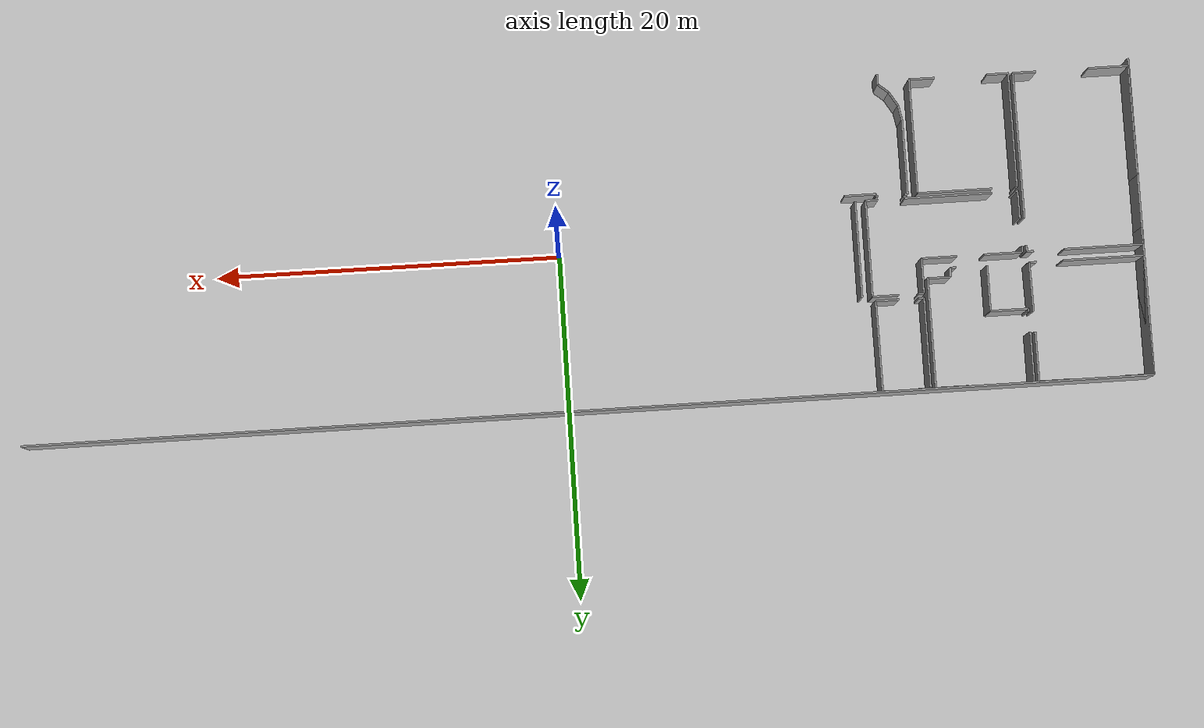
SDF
<sdf version="1.6">
 <world name="default">
  <model name="ground_plane">
   <static>1</static>
   <link name="link">
    <collision name="collision">
     <geometry><plane><normal>0 0 1</normal><size>100 100</size></plane></geometry>
     <surface><friction><ode><mu>100</mu><mu2>50</mu2></ode></friction></surface>
    </collision>
    <visual name="visual">
     <cast_shadows>0</cast_shadows>
     <geometry><plane><normal>0 0 1</normal><size>100 100</size></plane></geometry>
     <material>
      <script><uri>file://media/materials/scripts/gazebo.material</uri><name>Gazebo/Grey</name></script>
     </material>
    </visual>
   </link>
  </model>
  <model name="0510034870_A-40">
   <static>1</static>
   <link name="Wall_0">
    <collision name="Wall_0_Collision">
     <geometry><box><size>0.423984310042 0.1 2.5</size></box></geometry>
     <pose>0.211992155021 0 1.25 0 0 0</pose>
    </collision>
    <visual name="Wall_0_Visual">
     <pose>0.211992155021 0 1.25 0 0 0</pose>
     <geometry><box><size>0.423984310042 0.1 2.5</size></box></geometry>
     <material>
      <script><uri>file://media/materials/scripts/gazebo.material</uri><name>Gazebo/Grey</name></script>
      <ambient>1 1 1 1</ambient>
     </material>
    </visual>
    <pose>6.64944494868 -6.91932238675 0 0 0 3.14159265359</pose>
   </link>
   <link name="Wall_1">
    <collision name="Wall_1_Collision">
     <geometry><box><size>4.67449048891 0.1 2.5</size></box></geometry>
     <pose>2.33724524446 0 1.25 0 0 0</pose>
    </collision>
    <visual name="Wall_1_Visual">
     <pose>2.33724524446 0 1.25 0 0 0</pose>
     <geometry><box><size>4.67449048891 0.1 2.5</size></box></geometry>
     <material>
      <script><uri>file://media/materials/scripts/gazebo.material</uri><name>Gazebo/Grey</name></script>
      <ambient>1 1 1 1</ambient>
     </material>
    </visual>
    <pose>4.67449048891 -6.91932238675 0 0 0 3.14159265359</pose>
   </link>
   <link name="Wall_2">
    <collision name="Wall_2_Collision">
     <geometry><box><size>6.8962190501 0.1 2.5</size></box></geometry>
     <pose>3.44810952505 0 1.25 0 0 0</pose>
    </collision>
    <visual name="Wall_2_Visual">
     <pose>3.44810952505 0 1.25 0 0 0</pose>
     <geometry><box><size>6.8962190501 0.1 2.5</size></box></geometry>
     <material>
      <script><uri>file://media/materials/scripts/gazebo.material</uri><name>Gazebo/Grey</name></script>
      <ambient>1 1 1 1</ambient>
     </material>
    </visual>
    <pose>0.0 -6.91932238675 0 0 0 1.57079632679</pose>
   </link>
   <link name="Wall_3">
    <collision name="Wall_3_Collision">
     <geometry><box><size>1.73833567117 0.1 2.5</size></box></geometry>
     <pose>0.869167835585 0 1.25 0 0 0</pose>
    </collision>
    <visual name="Wall_3_Visual">
     <pose>0.869167835585 0 1.25 0 0 0</pose>
     <geometry><box><size>1.73833567117 0.1 2.5</size></box></geometry>
     <material>
      <script><uri>file://media/materials/scripts/gazebo.material</uri><name>Gazebo/Grey</name></script>
      <ambient>1 1 1 1</ambient>
     </material>
    </visual>
    <pose>0.0 -0.023103336655 0 0 0 0.0</pose>
   </link>
   <link name="Wall_4">
    <collision name="Wall_4_Collision">
     <geometry><box><size>1.85804142098 0.1 2.5</size></box></geometry>
     <pose>0.929020710491 0 1.25 0 0 0</pose>
    </collision>
    <visual name="Wall_4_Visual">
     <pose>0.929020710491 0 1.25 0 0 0</pose>
     <geometry><box><size>1.85804142098 0.1 2.5</size></box></geometry>
     <material>
      <script><uri>file://media/materials/scripts/gazebo.material</uri><name>Gazebo/Grey</name></script>
      <ambient>1 1 1 1</ambient>
     </material>
    </visual>
    <pose>4.75040145221 -0.023103336655 0 0 0 0.0</pose>
   </link>
   <link name="Wall_5">
    <collision name="Wall_5_Collision">
     <geometry><box><size>2.88918649597 0.1 2.5</size></box></geometry>
     <pose>1.44459324799 0 1.25 0 0 0</pose>
    </collision>
    <visual name="Wall_5_Visual">
     <pose>1.44459324799 0 1.25 0 0 0</pose>
     <geometry><box><size>2.88918649597 0.1 2.5</size></box></geometry>
     <material>
      <script><uri>file://media/materials/scripts/gazebo.material</uri><name>Gazebo/Grey</name></script>
      <ambient>1 1 1 1</ambient>
     </material>
    </visual>
    <pose>6.60844287319 -0.023103336655 0 0 0 -1.57079632679</pose>
   </link>
   <link name="Wall_6">
    <collision name="Wall_6_Collision">
     <geometry><box><size>2.83350200904 0.1 2.5</size></box></geometry>
     <pose>1.41675100452 0 1.25 0 0 0</pose>
    </collision>
    <visual name="Wall_6_Visual">
     <pose>1.41675100452 0 1.25 0 0 0</pose>
     <geometry><box><size>2.83350200904 0.1 2.5</size></box></geometry>
     <material>
      <script><uri>file://media/materials/scripts/gazebo.material</uri><name>Gazebo/Grey</name></script>
      <ambient>1 1 1 1</ambient>
     </material>
    </visual>
    <pose>6.60844287319 -4.08611705267 0 0 0 -1.55632536244</pose>
   </link>
   <link name="Wall_7">
    <collision name="Wall_7_Collision">
     <geometry><box><size>0.341980159058 0.1 2.5</size></box></geometry>
     <pose>0.170990079529 0 1.25 0 0 0</pose>
    </collision>
    <visual name="Wall_7_Visual">
     <pose>0.170990079529 0 1.25 0 0 0</pose>
     <geometry><box><size>0.341980159058 0.1 2.5</size></box></geometry>
     <material>
      <script><uri>file://media/materials/scripts/gazebo.material</uri><name>Gazebo/Grey</name></script>
      <ambient>1 1 1 1</ambient>
     </material>
    </visual>
    <pose>11.1978826173 -6.90066199945 0 0 0 3.14159265359</pose>
   </link>
   <link name="Wall_8">
    <collision name="Wall_8_Collision">
     <geometry><box><size>2.6478708752 0.1 2.5</size></box></geometry>
     <pose>1.3239354376 0 1.25 0 0 0</pose>
    </collision>
    <visual name="Wall_8_Visual">
     <pose>1.3239354376 0 1.25 0 0 0</pose>
     <geometry><box><size>2.6478708752 0.1 2.5</size></box></geometry>
     <material>
      <script><uri>file://media/materials/scripts/gazebo.material</uri><name>Gazebo/Grey</name></script>
      <ambient>1 1 1 1</ambient>
     </material>
    </visual>
    <pose>9.07643777015 -6.90066199945 0 0 0 1.57079632679</pose>
   </link>
   <link name="Wall_9">
    <collision name="Wall_9_Collision">
     <geometry><box><size>2.19532474786 0.1 2.5</size></box></geometry>
     <pose>1.09766237393 0 1.25 0 0 0</pose>
    </collision>
    <visual name="Wall_9_Visual">
     <pose>1.09766237393 0 1.25 0 0 0</pose>
     <geometry><box><size>2.19532474786 0.1 2.5</size></box></geometry>
     <material>
      <script><uri>file://media/materials/scripts/gazebo.material</uri><name>Gazebo/Grey</name></script>
      <ambient>1 1 1 1</ambient>
     </material>
    </visual>
    <pose>9.07643777015 -4.25279112426 0 0 0 3.14159265359</pose>
   </link>
   <link name="Wall_10">
    <collision name="Wall_10_Collision">
     <geometry><box><size>0.173275024912 0.1 2.5</size></box></geometry>
     <pose>0.0866375124561 0 1.25 0 0 0</pose>
    </collision>
    <visual name="Wall_10_Visual">
     <pose>0.0866375124561 0 1.25 0 0 0</pose>
     <geometry><box><size>0.173275024912 0.1 2.5</size></box></geometry>
     <material>
      <script><uri>file://media/materials/scripts/gazebo.material</uri><name>Gazebo/Grey</name></script>
      <ambient>1 1 1 1</ambient>
     </material>
    </visual>
    <pose>6.88111302228 -4.25279112426 0 0 0 1.57079632679</pose>
   </link>
   <link name="Wall_11">
    <collision name="Wall_11_Collision">
     <geometry><box><size>2.89629521494 0.1 2.5</size></box></geometry>
     <pose>1.44814760747 0 1.25 0 0 0</pose>
    </collision>
    <visual name="Wall_11_Visual">
     <pose>1.44814760747 0 1.25 0 0 0</pose>
     <geometry><box><size>2.89629521494 0.1 2.5</size></box></geometry>
     <material>
      <script><uri>file://media/materials/scripts/gazebo.material</uri><name>Gazebo/Grey</name></script>
      <ambient>1 1 1 1</ambient>
     </material>
    </visual>
    <pose>6.88111302228 -2.91724054763 0 0 0 1.57079632679</pose>
   </link>
   <link name="Wall_12">
    <collision name="Wall_12_Collision">
     <geometry><box><size>0.745273019238 0.1 2.5</size></box></geometry>
     <pose>0.372636509619 0 1.25 0 0 0</pose>
    </collision>
    <visual name="Wall_12_Visual">
     <pose>0.372636509619 0 1.25 0 0 0</pose>
     <geometry><box><size>0.745273019238 0.1 2.5</size></box></geometry>
     <material>
      <script><uri>file://media/materials/scripts/gazebo.material</uri><name>Gazebo/Grey</name></script>
      <ambient>1 1 1 1</ambient>
     </material>
    </visual>
    <pose>6.88111302228 -0.0209453326817 0 0 0 0.0</pose>
   </link>
   <link name="Wall_13">
    <collision name="Wall_13_Collision">
     <geometry><box><size>1.89333113302 0.1 2.5</size></box></geometry>
     <pose>0.946665566508 0 1.25 0 0 0</pose>
    </collision>
    <visual name="Wall_13_Visual">
     <pose>0.946665566508 0 1.25 0 0 0</pose>
     <geometry><box><size>1.89333113302 0.1 2.5</size></box></geometry>
     <material>
      <script><uri>file://media/materials/scripts/gazebo.material</uri><name>Gazebo/Grey</name></script>
      <ambient>1 1 1 1</ambient>
     </material>
    </visual>
    <pose>10.6502573737 -0.0209453326817 0 0 0 0.0</pose>
   </link>
   <link name="Wall_14">
    <collision name="Wall_14_Collision">
     <geometry><box><size>6.34960933781 0.1 2.5</size></box></geometry>
     <pose>3.17480466891 0 1.25 0 0 0</pose>
    </collision>
    <visual name="Wall_14_Visual">
     <pose>3.17480466891 0 1.25 0 0 0</pose>
     <geometry><box><size>6.34960933781 0.1 2.5</size></box></geometry>
     <material>
      <script><uri>file://media/materials/scripts/gazebo.material</uri><name>Gazebo/Grey</name></script>
      <ambient>1 1 1 1</ambient>
     </material>
    </visual>
    <pose>12.5435885067 -0.0209453326817 0 0 0 -1.57079632679</pose>
   </link>
   <link name="Wall_15">
    <collision name="Wall_15_Collision">
     <geometry><box><size>1.3077504078 0.1 2.5</size></box></geometry>
     <pose>0.6538752039 0 1.25 0 0 0</pose>
    </collision>
    <visual name="Wall_15_Visual">
     <pose>0.6538752039 0 1.25 0 0 0</pose>
     <geometry><box><size>1.3077504078 0.1 2.5</size></box></geometry>
     <material>
      <script><uri>file://media/materials/scripts/gazebo.material</uri><name>Gazebo/Grey</name></script>
      <ambient>1 1 1 1</ambient>
     </material>
    </visual>
    <pose>12.5435885067 -6.37055467049 0 0 0 3.14159265359</pose>
   </link>
   <link name="Wall_16">
    <collision name="Wall_16_Collision">
     <geometry><box><size>0.531464390911 0.1 2.5</size></box></geometry>
     <pose>0.265732195456 0 1.25 0 0 0</pose>
    </collision>
    <visual name="Wall_16_Visual">
     <pose>0.265732195456 0 1.25 0 0 0</pose>
     <geometry><box><size>0.531464390911 0.1 2.5</size></box></geometry>
     <material>
      <script><uri>file://media/materials/scripts/gazebo.material</uri><name>Gazebo/Grey</name></script>
      <ambient>1 1 1 1</ambient>
     </material>
    </visual>
    <pose>11.2358380989 -6.37055467049 0 0 0 -1.64227396669</pose>
   </link>
   <link name="Wall_17">
    <collision name="Wall_17_Collision">
     <geometry><box><size>1.35560731944 0.1 2.5</size></box></geometry>
     <pose>0.677803659721 0 1.25 0 0 0</pose>
    </collision>
    <visual name="Wall_17_Visual">
     <pose>0.677803659721 0 1.25 0 0 0</pose>
     <geometry><box><size>1.35560731944 0.1 2.5</size></box></geometry>
     <material>
      <script><uri>file://media/materials/scripts/gazebo.material</uri><name>Gazebo/Grey</name></script>
      <ambient>1 1 1 1</ambient>
     </material>
    </visual>
    <pose>6.73728840454 -18.0051157388 0 0 0 3.14159265359</pose>
   </link>
   <link name="Wall_18">
    <collision name="Wall_18_Collision">
     <geometry><box><size>2.34333843215 0.1 2.5</size></box></geometry>
     <pose>1.17166921607 0 1.25 0 0 0</pose>
    </collision>
    <visual name="Wall_18_Visual">
     <pose>1.17166921607 0 1.25 0 0 0</pose>
     <geometry><box><size>2.34333843215 0.1 2.5</size></box></geometry>
     <material>
      <script><uri>file://media/materials/scripts/gazebo.material</uri><name>Gazebo/Grey</name></script>
      <ambient>1 1 1 1</ambient>
     </material>
    </visual>
    <pose>2.35780975291 -18.0051157388 0 0 0 3.14159265359</pose>
   </link>
   <link name="Wall_19">
    <collision name="Wall_19_Collision">
     <geometry><box><size>6.41523804688 0.1 2.5</size></box></geometry>
     <pose>3.20761902344 0 1.25 0 0 0</pose>
    </collision>
    <visual name="Wall_19_Visual">
     <pose>3.20761902344 0 1.25 0 0 0</pose>
     <geometry><box><size>6.41523804688 0.1 2.5</size></box></geometry>
     <material>
      <script><uri>file://media/materials/scripts/gazebo.material</uri><name>Gazebo/Grey</name></script>
      <ambient>1 1 1 1</ambient>
     </material>
    </visual>
    <pose>0.0144713207619 -18.0051157388 0 0 0 1.57079632679</pose>
   </link>
   <link name="Wall_20">
    <collision name="Wall_20_Collision">
     <geometry><box><size>0.971990377841 0.1 2.5</size></box></geometry>
     <pose>0.485995188921 0 1.25 0 0 0</pose>
    </collision>
    <visual name="Wall_20_Visual">
     <pose>0.485995188921 0 1.25 0 0 0</pose>
     <geometry><box><size>0.971990377841 0.1 2.5</size></box></geometry>
     <material>
      <script><uri>file://media/materials/scripts/gazebo.material</uri><name>Gazebo/Grey</name></script>
      <ambient>1 1 1 1</ambient>
     </material>
    </visual>
    <pose>0.0144713207619 -8.5352865385 0 0 0 1.57079632679</pose>
   </link>
   <link name="Wall_21">
    <collision name="Wall_21_Collision">
     <geometry><box><size>4.54399471924 0.1 2.5</size></box></geometry>
     <pose>2.27199735962 0 1.25 0 0 0</pose>
    </collision>
    <visual name="Wall_21_Visual">
     <pose>2.27199735962 0 1.25 0 0 0</pose>
     <geometry><box><size>4.54399471924 0.1 2.5</size></box></geometry>
     <material>
      <script><uri>file://media/materials/scripts/gazebo.material</uri><name>Gazebo/Grey</name></script>
      <ambient>1 1 1 1</ambient>
     </material>
    </visual>
    <pose>0.0144713207619 -7.56329616066 0 0 0 0.0</pose>
   </link>
   <link name="Wall_22">
    <collision name="Wall_22_Collision">
     <geometry><box><size>0.392248957494 0.1 2.5</size></box></geometry>
     <pose>0.196124478747 0 1.25 0 0 0</pose>
    </collision>
    <visual name="Wall_22_Visual">
     <pose>0.196124478747 0 1.25 0 0 0</pose>
     <geometry><box><size>0.392248957494 0.1 2.5</size></box></geometry>
     <material>
      <script><uri>file://media/materials/scripts/gazebo.material</uri><name>Gazebo/Grey</name></script>
      <ambient>1 1 1 1</ambient>
     </material>
    </visual>
    <pose>6.33044118487 -7.56329616066 0 0 0 0.0</pose>
   </link>
   <link name="Wall_23">
    <collision name="Wall_23_Collision">
     <geometry><box><size>0.37028809353 0.1 2.5</size></box></geometry>
     <pose>0.185144046765 0 1.25 0 0 0</pose>
    </collision>
    <visual name="Wall_23_Visual">
     <pose>0.185144046765 0 1.25 0 0 0</pose>
     <geometry><box><size>0.37028809353 0.1 2.5</size></box></geometry>
     <material>
      <script><uri>file://media/materials/scripts/gazebo.material</uri><name>Gazebo/Grey</name></script>
      <ambient>1 1 1 1</ambient>
     </material>
    </visual>
    <pose>6.72269014236 -7.56329616066 0 0 0 -1.57079632679</pose>
   </link>
   <link name="Wall_24">
    <collision name="Wall_24_Collision">
     <geometry><box><size>8.48896547592 0.1 2.5</size></box></geometry>
     <pose>4.24448273796 0 1.25 0 0 0</pose>
    </collision>
    <visual name="Wall_24_Visual">
     <pose>4.24448273796 0 1.25 0 0 0</pose>
     <geometry><box><size>8.48896547592 0.1 2.5</size></box></geometry>
     <material>
      <script><uri>file://media/materials/scripts/gazebo.material</uri><name>Gazebo/Grey</name></script>
      <ambient>1 1 1 1</ambient>
     </material>
    </visual>
    <pose>6.72269014236 -9.51616281505 0 0 0 -1.56907665089</pose>
   </link>
   <link name="Wall_25">
    <collision name="Wall_25_Collision">
     <geometry><box><size>1.48242178822 0.1 2.5</size></box></geometry>
     <pose>0.741210894112 0 1.25 0 0 0</pose>
    </collision>
    <visual name="Wall_25_Visual">
     <pose>0.741210894112 0 1.25 0 0 0</pose>
     <geometry><box><size>1.48242178822 0.1 2.5</size></box></geometry>
     <material>
      <script><uri>file://media/materials/scripts/gazebo.material</uri><name>Gazebo/Grey</name></script>
      <ambient>1 1 1 1</ambient>
     </material>
    </visual>
    <pose>12.7630702049 -18.0068929186 0 0 0 3.14159265359</pose>
   </link>
   <link name="Wall_26">
    <collision name="Wall_26_Collision">
     <geometry><box><size>1.25024594898 0.1 2.5</size></box></geometry>
     <pose>0.625122974491 0 1.25 0 0 0</pose>
    </collision>
    <visual name="Wall_26_Visual">
     <pose>0.625122974491 0 1.25 0 0 0</pose>
     <geometry><box><size>1.25024594898 0.1 2.5</size></box></geometry>
     <material>
      <script><uri>file://media/materials/scripts/gazebo.material</uri><name>Gazebo/Grey</name></script>
      <ambient>1 1 1 1</ambient>
     </material>
    </visual>
    <pose>8.24547929903 -18.0068929186 0 0 0 3.14159265359</pose>
   </link>
   <link name="Wall_27">
    <collision name="Wall_27_Collision">
     <geometry><box><size>6.67064416419 0.1 2.5</size></box></geometry>
     <pose>3.33532208209 0 1.25 0 0 0</pose>
    </collision>
    <visual name="Wall_27_Visual">
     <pose>3.33532208209 0 1.25 0 0 0</pose>
     <geometry><box><size>6.67064416419 0.1 2.5</size></box></geometry>
     <material>
      <script><uri>file://media/materials/scripts/gazebo.material</uri><name>Gazebo/Grey</name></script>
      <ambient>1 1 1 1</ambient>
     </material>
    </visual>
    <pose>6.99523335005 -18.0068929186 0 0 0 1.57079632679</pose>
   </link>
   <link name="Wall_28">
    <collision name="Wall_28_Collision">
     <geometry><box><size>0.0954599404645 0.1 2.5</size></box></geometry>
     <pose>0.0477299702322 0 1.25 0 0 0</pose>
    </collision>
    <visual name="Wall_28_Visual">
     <pose>0.0477299702322 0 1.25 0 0 0</pose>
     <geometry><box><size>0.0954599404645 0.1 2.5</size></box></geometry>
     <material>
      <script><uri>file://media/materials/scripts/gazebo.material</uri><name>Gazebo/Grey</name></script>
      <ambient>1 1 1 1</ambient>
     </material>
    </visual>
    <pose>6.99523335005 -11.3362487544 0 0 0 0.0</pose>
   </link>
   <link name="Wall_29">
    <collision name="Wall_29_Collision">
     <geometry><box><size>4.32019701307 0.1 2.5</size></box></geometry>
     <pose>2.16009850653 0 1.25 0 0 0</pose>
    </collision>
    <visual name="Wall_29_Visual">
     <pose>2.16009850653 0 1.25 0 0 0</pose>
     <geometry><box><size>4.32019701307 0.1 2.5</size></box></geometry>
     <material>
      <script><uri>file://media/materials/scripts/gazebo.material</uri><name>Gazebo/Grey</name></script>
      <ambient>1 1 1 1</ambient>
     </material>
    </visual>
    <pose>8.43741471124 -11.3362487544 0 0 0 0.0</pose>
   </link>
   <link name="Wall_30">
    <collision name="Wall_30_Collision">
     <geometry><box><size>6.67064639748 0.1 2.5</size></box></geometry>
     <pose>3.33532319874 0 1.25 0 0 0</pose>
    </collision>
    <visual name="Wall_30_Visual">
     <pose>3.33532319874 0 1.25 0 0 0</pose>
     <geometry><box><size>6.67064639748 0.1 2.5</size></box></geometry>
     <material>
      <script><uri>file://media/materials/scripts/gazebo.material</uri><name>Gazebo/Grey</name></script>
      <ambient>1 1 1 1</ambient>
     </material>
    </visual>
    <pose>12.7576117243 -11.3362487544 0 0 0 -1.56997804309</pose>
   </link>
   <link name="Wall_31">
    <collision name="Wall_31_Collision">
     <geometry><box><size>0.70706365477 0.1 2.5</size></box></geometry>
     <pose>0.353531827385 0 1.25 0 0 0</pose>
    </collision>
    <visual name="Wall_31_Visual">
     <pose>0.353531827385 0 1.25 0 0 0</pose>
     <geometry><box><size>0.70706365477 0.1 2.5</size></box></geometry>
     <material>
      <script><uri>file://media/materials/scripts/gazebo.material</uri><name>Gazebo/Grey</name></script>
      <ambient>1 1 1 1</ambient>
     </material>
    </visual>
    <pose>15.780086701 -11.0998838486 0 0 0 3.14159265359</pose>
   </link>
   <link name="Wall_32">
    <collision name="Wall_32_Collision">
     <geometry><box><size>5.05886907898 0.1 2.5</size></box></geometry>
     <pose>2.52943453949 0 1.25 0 0 0</pose>
    </collision>
    <visual name="Wall_32_Visual">
     <pose>2.52943453949 0 1.25 0 0 0</pose>
     <geometry><box><size>5.05886907898 0.1 2.5</size></box></geometry>
     <material>
      <script><uri>file://media/materials/scripts/gazebo.material</uri><name>Gazebo/Grey</name></script>
      <ambient>1 1 1 1</ambient>
     </material>
    </visual>
    <pose>13.510755111 -11.0998838486 0 0 0 3.14159265359</pose>
   </link>
   <link name="Wall_33">
    <collision name="Wall_33_Collision">
     <geometry><box><size>0.154487696204 0.1 2.5</size></box></geometry>
     <pose>0.0772438481019 0 1.25 0 0 0</pose>
    </collision>
    <visual name="Wall_33_Visual">
     <pose>0.0772438481019 0 1.25 0 0 0</pose>
     <geometry><box><size>0.154487696204 0.1 2.5</size></box></geometry>
     <material>
      <script><uri>file://media/materials/scripts/gazebo.material</uri><name>Gazebo/Grey</name></script>
      <ambient>1 1 1 1</ambient>
     </material>
    </visual>
    <pose>7.13220313164 -11.0998838486 0 0 0 3.14159265359</pose>
   </link>
   <link name="Wall_34">
    <collision name="Wall_34_Collision">
     <geometry><box><size>1.61380614777 0.1 2.5</size></box></geometry>
     <pose>0.806903073886 0 1.25 0 0 0</pose>
    </collision>
    <visual name="Wall_34_Visual">
     <pose>0.806903073886 0 1.25 0 0 0</pose>
     <geometry><box><size>1.61380614777 0.1 2.5</size></box></geometry>
     <material>
      <script><uri>file://media/materials/scripts/gazebo.material</uri><name>Gazebo/Grey</name></script>
      <ambient>1 1 1 1</ambient>
     </material>
    </visual>
    <pose>6.97771543544 -11.0998838486 0 0 0 1.57079632679</pose>
   </link>
   <link name="Wall_35">
    <collision name="Wall_35_Collision">
     <geometry><box><size>0.367241499686 0.1 2.5</size></box></geometry>
     <pose>0.183620749843 0 1.25 0 0 0</pose>
    </collision>
    <visual name="Wall_35_Visual">
     <pose>0.183620749843 0 1.25 0 0 0</pose>
     <geometry><box><size>0.367241499686 0.1 2.5</size></box></geometry>
     <material>
      <script><uri>file://media/materials/scripts/gazebo.material</uri><name>Gazebo/Grey</name></script>
      <ambient>1 1 1 1</ambient>
     </material>
    </visual>
    <pose>6.97771543544 -7.90857679638 0 0 0 1.57079632679</pose>
   </link>
   <link name="Wall_36">
    <collision name="Wall_36_Collision">
     <geometry><box><size>2.19887910735 0.1 2.5</size></box></geometry>
     <pose>1.09943955367 0 1.25 0 0 0</pose>
    </collision>
    <visual name="Wall_36_Visual">
     <pose>1.09943955367 0 1.25 0 0 0</pose>
     <geometry><box><size>2.19887910735 0.1 2.5</size></box></geometry>
     <material>
      <script><uri>file://media/materials/scripts/gazebo.material</uri><name>Gazebo/Grey</name></script>
      <ambient>1 1 1 1</ambient>
     </material>
    </visual>
    <pose>6.97771543544 -7.54133529669 0 0 0 0.0</pose>
   </link>
   <link name="Wall_37">
    <collision name="Wall_37_Collision">
     <geometry><box><size>2.05645084511 0.1 2.5</size></box></geometry>
     <pose>1.02822542256 0 1.25 0 0 0</pose>
    </collision>
    <visual name="Wall_37_Visual">
     <pose>1.02822542256 0 1.25 0 0 0</pose>
     <geometry><box><size>2.05645084511 0.1 2.5</size></box></geometry>
     <material>
      <script><uri>file://media/materials/scripts/gazebo.material</uri><name>Gazebo/Grey</name></script>
      <ambient>1 1 1 1</ambient>
     </material>
    </visual>
    <pose>10.7533337988 -7.54133529669 0 0 0 0.0</pose>
   </link>
   <link name="Wall_38">
    <collision name="Wall_38_Collision">
     <geometry><box><size>2.03258586 0.1 2.5</size></box></geometry>
     <pose>1.01629293 0 1.25 0 0 0</pose>
    </collision>
    <visual name="Wall_38_Visual">
     <pose>1.01629293 0 1.25 0 0 0</pose>
     <geometry><box><size>2.03258586 0.1 2.5</size></box></geometry>
     <material>
      <script><uri>file://media/materials/scripts/gazebo.material</uri><name>Gazebo/Grey</name></script>
      <ambient>1 1 1 1</ambient>
     </material>
    </visual>
    <pose>12.8097846439 -7.54133529669 0 0 0 1.57079632679</pose>
   </link>
   <link name="Wall_39">
    <collision name="Wall_39_Collision">
     <geometry><box><size>0.32344671317 0.1 2.5</size></box></geometry>
     <pose>0.161723356585 0 1.25 0 0 0</pose>
    </collision>
    <visual name="Wall_39_Visual">
     <pose>0.161723356585 0 1.25 0 0 0</pose>
     <geometry><box><size>0.32344671317 0.1 2.5</size></box></geometry>
     <material>
      <script><uri>file://media/materials/scripts/gazebo.material</uri><name>Gazebo/Grey</name></script>
      <ambient>1 1 1 1</ambient>
     </material>
    </visual>
    <pose>12.8097846439 -5.5087494367 0 0 0 0.0</pose>
   </link>
   <link name="Wall_40">
    <collision name="Wall_40_Collision">
     <geometry><box><size>1.52101197692 0.1 2.5</size></box></geometry>
     <pose>0.760505988461 0 1.25 0 0 0</pose>
    </collision>
    <visual name="Wall_40_Visual">
     <pose>0.760505988461 0 1.25 0 0 0</pose>
     <geometry><box><size>1.52101197692 0.1 2.5</size></box></geometry>
     <material>
      <script><uri>file://media/materials/scripts/gazebo.material</uri><name>Gazebo/Grey</name></script>
      <ambient>1 1 1 1</ambient>
     </material>
    </visual>
    <pose>14.2651679118 -5.5087494367 0 0 0 0.0</pose>
   </link>
   <link name="Wall_41">
    <collision name="Wall_41_Collision">
     <geometry><box><size>5.59113773207 0.1 2.5</size></box></geometry>
     <pose>2.79556886604 0 1.25 0 0 0</pose>
    </collision>
    <visual name="Wall_41_Visual">
     <pose>2.79556886604 0 1.25 0 0 0</pose>
     <geometry><box><size>5.59113773207 0.1 2.5</size></box></geometry>
     <material>
      <script><uri>file://media/materials/scripts/gazebo.material</uri><name>Gazebo/Grey</name></script>
      <ambient>1 1 1 1</ambient>
     </material>
    </visual>
    <pose>15.7861798887 -5.5087494367 0 0 0 -1.57188612089</pose>
   </link>
   <link name="Wall_42">
    <collision name="Wall_42_Collision">
     <geometry><box><size>1.34240541278 0.1 2.5</size></box></geometry>
     <pose>0.671202706391 0 1.25 0 0 0</pose>
    </collision>
    <visual name="Wall_42_Visual">
     <pose>0.671202706391 0 1.25 0 0 0</pose>
     <geometry><box><size>1.34240541278 0.1 2.5</size></box></geometry>
     <material>
      <script><uri>file://media/materials/scripts/gazebo.material</uri><name>Gazebo/Grey</name></script>
      <ambient>1 1 1 1</ambient>
     </material>
    </visual>
    <pose>15.6202674656 -5.25435885067 0 0 0 3.14159265359</pose>
   </link>
   <link name="Wall_43">
    <collision name="Wall_43_Collision">
     <geometry><box><size>0.31709964266 0.1 2.5</size></box></geometry>
     <pose>0.15854982133 0 1.25 0 0 0</pose>
    </collision>
    <visual name="Wall_43_Visual">
     <pose>0.15854982133 0 1.25 0 0 0</pose>
     <geometry><box><size>0.31709964266 0.1 2.5</size></box></geometry>
     <material>
      <script><uri>file://media/materials/scripts/gazebo.material</uri><name>Gazebo/Grey</name></script>
      <ambient>1 1 1 1</ambient>
     </material>
    </visual>
    <pose>13.1412286659 -5.25435885067 0 0 0 3.14159265359</pose>
   </link>
   <link name="Wall_44">
    <collision name="Wall_44_Collision">
     <geometry><box><size>5.23341351799 0.1 2.5</size></box></geometry>
     <pose>2.616706759 0 1.25 0 0 0</pose>
    </collision>
    <visual name="Wall_44_Visual">
     <pose>2.616706759 0 1.25 0 0 0</pose>
     <geometry><box><size>5.23341351799 0.1 2.5</size></box></geometry>
     <material>
      <script><uri>file://media/materials/scripts/gazebo.material</uri><name>Gazebo/Grey</name></script>
      <ambient>1 1 1 1</ambient>
     </material>
    </visual>
    <pose>12.8241290232 -5.25435885067 0 0 0 1.57079632679</pose>
   </link>
   <link name="Wall_45">
    <collision name="Wall_45_Collision">
     <geometry><box><size>0.679898192989 0.1 2.5</size></box></geometry>
     <pose>0.339949096495 0 1.25 0 0 0</pose>
    </collision>
    <visual name="Wall_45_Visual">
     <pose>0.339949096495 0 1.25 0 0 0</pose>
     <geometry><box><size>0.679898192989 0.1 2.5</size></box></geometry>
     <material>
      <script><uri>file://media/materials/scripts/gazebo.material</uri><name>Gazebo/Grey</name></script>
      <ambient>1 1 1 1</ambient>
     </material>
    </visual>
    <pose>12.8241290232 -0.0209453326817 0 0 0 0.0</pose>
   </link>
   <link name="Wall_46">
    <collision name="Wall_46_Collision">
     <geometry><box><size>0.558415263435 0.1 2.5</size></box></geometry>
     <pose>0.279207631718 0 1.25 0 0 0</pose>
    </collision>
    <visual name="Wall_46_Visual">
     <pose>0.279207631718 0 1.25 0 0 0</pose>
     <geometry><box><size>0.558415263435 0.1 2.5</size></box></geometry>
     <material>
      <script><uri>file://media/materials/scripts/gazebo.material</uri><name>Gazebo/Grey</name></script>
      <ambient>1 1 1 1</ambient>
     </material>
    </visual>
    <pose>15.0363369787 -0.0209453326817 0 0 0 0.0</pose>
   </link>
   <link name="Wall_47">
    <collision name="Wall_47_Collision">
     <geometry><box><size>5.23347571666 0.1 2.5</size></box></geometry>
     <pose>2.61673785833 0 1.25 0 0 0</pose>
    </collision>
    <visual name="Wall_47_Visual">
     <pose>2.61673785833 0 1.25 0 0 0</pose>
     <geometry><box><size>5.23347571666 0.1 2.5</size></box></geometry>
     <material>
      <script><uri>file://media/materials/scripts/gazebo.material</uri><name>Gazebo/Grey</name></script>
      <ambient>1 1 1 1</ambient>
     </material>
    </visual>
    <pose>15.5947522421 -0.0209453326817 0 0 0 -1.56592091972</pose>
   </link>
   <link name="Wall_48">
    <collision name="Wall_48_Collision">
     <geometry><box><size>0.612238421357 0.1 2.5</size></box></geometry>
     <pose>0.306119210678 0 1.25 0 0 0</pose>
    </collision>
    <visual name="Wall_48_Visual">
     <pose>0.306119210678 0 1.25 0 0 0</pose>
     <geometry><box><size>0.612238421357 0.1 2.5</size></box></geometry>
     <material>
      <script><uri>file://media/materials/scripts/gazebo.material</uri><name>Gazebo/Grey</name></script>
      <ambient>1 1 1 1</ambient>
     </material>
    </visual>
    <pose>14.587091328 -18.4376051234 0 0 0 1.57079632679</pose>
   </link>
   <link name="Wall_49">
    <collision name="Wall_49_Collision">
     <geometry><box><size>0.774941752337 0.1 2.5</size></box></geometry>
     <pose>0.387470876168 0 1.25 0 0 0</pose>
    </collision>
    <visual name="Wall_49_Visual">
     <pose>0.387470876168 0 1.25 0 0 0</pose>
     <geometry><box><size>0.774941752337 0.1 2.5</size></box></geometry>
     <material>
      <script><uri>file://media/materials/scripts/gazebo.material</uri><name>Gazebo/Grey</name></script>
      <ambient>1 1 1 1</ambient>
     </material>
    </visual>
    <pose>14.587091328 -17.825366702 0 0 0 2.44282746906</pose>
   </link>
   <link name="Wall_50">
    <collision name="Wall_50_Collision">
     <geometry><box><size>0.942740448398 0.1 2.5</size></box></geometry>
     <pose>0.471370224199 0 1.25 0 0 0</pose>
    </collision>
    <visual name="Wall_50_Visual">
     <pose>0.471370224199 0 1.25 0 0 0</pose>
     <geometry><box><size>0.942740448398 0.1 2.5</size></box></geometry>
     <material>
      <script><uri>file://media/materials/scripts/gazebo.material</uri><name>Gazebo/Grey</name></script>
      <ambient>1 1 1 1</ambient>
     </material>
    </visual>
    <pose>13.9937671768 -17.3268677842 0 0 0 2.11232426925</pose>
   </link>
   <link name="Wall_51">
    <collision name="Wall_51_Collision">
     <geometry><box><size>0.875119093296 0.1 2.5</size></box></geometry>
     <pose>0.437559546648 0 1.25 0 0 0</pose>
    </collision>
    <visual name="Wall_51_Visual">
     <pose>0.437559546648 0 1.25 0 0 0</pose>
     <geometry><box><size>0.875119093296 0.1 2.5</size></box></geometry>
     <material>
      <script><uri>file://media/materials/scripts/gazebo.material</uri><name>Gazebo/Grey</name></script>
      <ambient>1 1 1 1</ambient>
     </material>
    </visual>
    <pose>13.5078354585 -16.5190126497 0 0 0 1.76671259778</pose>
   </link>
   <link name="Wall_52">
    <collision name="Wall_52_Collision">
     <geometry><box><size>4.33390668537 0.1 2.5</size></box></geometry>
     <pose>2.16695334268 0 1.25 0 0 0</pose>
    </collision>
    <visual name="Wall_52_Visual">
     <pose>2.16695334268 0 1.25 0 0 0</pose>
     <geometry><box><size>4.33390668537 0.1 2.5</size></box></geometry>
     <material>
      <script><uri>file://media/materials/scripts/gazebo.material</uri><name>Gazebo/Grey</name></script>
      <ambient>1 1 1 1</ambient>
     </material>
    </visual>
    <pose>13.3374800861 -15.660634834 0 0 0 1.57079632679</pose>
   </link>
   <link name="Wall_53">
    <collision name="Wall_53_Collision">
     <geometry><box><size>0.157407348638 0.1 2.5</size></box></geometry>
     <pose>0.0787036743191 0 1.25 0 0 0</pose>
    </collision>
    <visual name="Wall_53_Visual">
     <pose>0.0787036743191 0 1.25 0 0 0</pose>
     <geometry><box><size>0.157407348638 0.1 2.5</size></box></geometry>
     <material>
      <script><uri>file://media/materials/scripts/gazebo.material</uri><name>Gazebo/Grey</name></script>
      <ambient>1 1 1 1</ambient>
     </material>
    </visual>
    <pose>13.3374800861 -11.3267281486 0 0 0 0.0</pose>
   </link>
   <link name="Wall_54">
    <collision name="Wall_54_Collision">
     <geometry><box><size>0.126179761731 0.1 2.5</size></box></geometry>
     <pose>0.0630898808655 0 1.25 0 0 0</pose>
    </collision>
    <visual name="Wall_54_Visual">
     <pose>0.0630898808655 0 1.25 0 0 0</pose>
     <geometry><box><size>0.126179761731 0.1 2.5</size></box></geometry>
     <material>
      <script><uri>file://media/materials/scripts/gazebo.material</uri><name>Gazebo/Grey</name></script>
      <ambient>1 1 1 1</ambient>
     </material>
    </visual>
    <pose>15.0297360253 -11.3267281486 0 0 0 0.0</pose>
   </link>
   <link name="Wall_55">
    <collision name="Wall_55_Collision">
     <geometry><box><size>0.114755034814 0.1 2.5</size></box></geometry>
     <pose>0.0573775174068 0 1.25 0 0 0</pose>
    </collision>
    <visual name="Wall_55_Visual">
     <pose>0.0573775174068 0 1.25 0 0 0</pose>
     <geometry><box><size>0.114755034814 0.1 2.5</size></box></geometry>
     <material>
      <script><uri>file://media/materials/scripts/gazebo.material</uri><name>Gazebo/Grey</name></script>
      <ambient>1 1 1 1</ambient>
     </material>
    </visual>
    <pose>15.1559157871 -11.3267281486 0 0 0 -1.57079632679</pose>
   </link>
   <link name="Wall_56">
    <collision name="Wall_56_Collision">
     <geometry><box><size>1.82744854113 0.1 2.5</size></box></geometry>
     <pose>0.913724270563 0 1.25 0 0 0</pose>
    </collision>
    <visual name="Wall_56_Visual">
     <pose>0.913724270563 0 1.25 0 0 0</pose>
     <geometry><box><size>1.82744854113 0.1 2.5</size></box></geometry>
     <material>
      <script><uri>file://media/materials/scripts/gazebo.material</uri><name>Gazebo/Grey</name></script>
      <ambient>1 1 1 1</ambient>
     </material>
    </visual>
    <pose>15.1559157871 -11.4414831834 0 0 0 0.0</pose>
   </link>
   <link name="Wall_68">
    <collision name="Wall_68_Collision">
     <geometry><box><size>5.58884946653 0.1 2.5</size></box></geometry>
     <pose>2.79442473326 0 1.25 0 0 0</pose>
    </collision>
    <visual name="Wall_68_Visual">
     <pose>2.79442473326 0 1.25 0 0 0</pose>
     <geometry><box><size>5.58884946653 0.1 2.5</size></box></geometry>
     <material>
      <script><uri>file://media/materials/scripts/gazebo.material</uri><name>Gazebo/Grey</name></script>
      <ambient>1 1 1 1</ambient>
     </material>
    </visual>
    <pose>16.3822967509 -11.0975989032 0 0 0 1.57079632679</pose>
   </link>
   <link name="Wall_237">
    <collision name="Wall_237_Collision">
     <geometry><box><size>18.4376051234 0.1 2.5</size></box></geometry>
     <pose>9.21880256168 0 1.25 0 0 0</pose>
    </collision>
    <visual name="Wall_237_Visual">
     <pose>9.21880256168 0 1.25 0 0 0</pose>
     <geometry><box><size>18.4376051234 0.1 2.5</size></box></geometry>
     <material>
      <script><uri>file://media/materials/scripts/gazebo.material</uri><name>Gazebo/Grey</name></script>
      <ambient>1 1 1 1</ambient>
     </material>
    </visual>
    <pose>0.0 -18.4376051234 0 0 0 1.57079632679</pose>
   </link>
   <link name="Wall_238">
    <collision name="Wall_238_Collision">
     <geometry><box><size>65.0320844414 0.1 2.5</size></box></geometry>
     <pose>32.5160422207 0 1.25 0 0 0</pose>
    </collision>
    <visual name="Wall_238_Visual">
     <pose>32.5160422207 0 1.25 0 0 0</pose>
     <geometry><box><size>65.0320844414 0.1 2.5</size></box></geometry>
     <material>
      <script><uri>file://media/materials/scripts/gazebo.material</uri><name>Gazebo/Grey</name></script>
      <ambient>1 1 1 1</ambient>
     </material>
    </visual>
   </link>
   <pose>-33.6 9.23760512336 0 0 0 0</pose>
  </model>
 </world>
</sdf>
